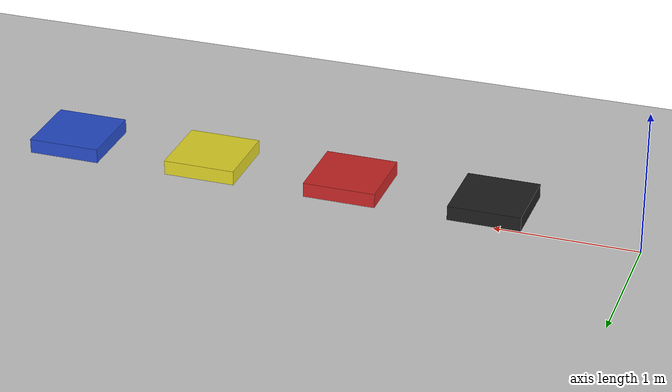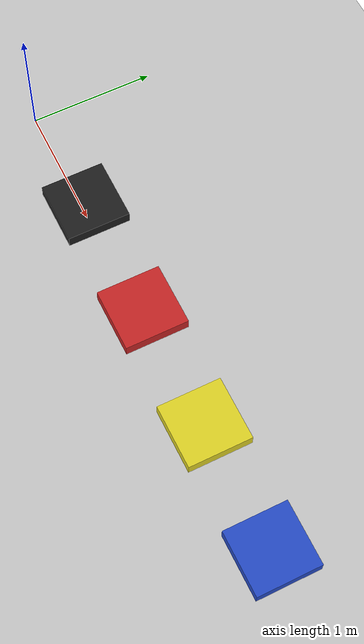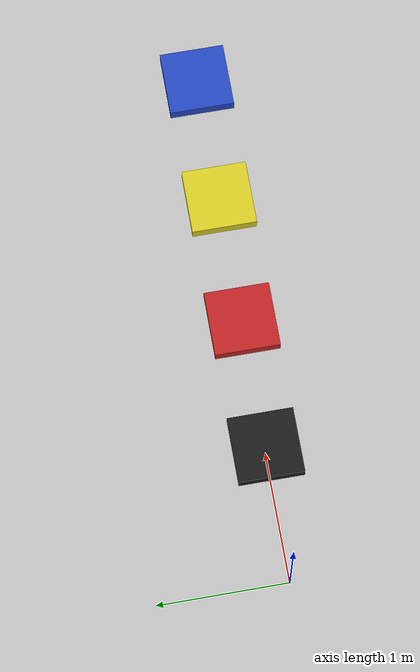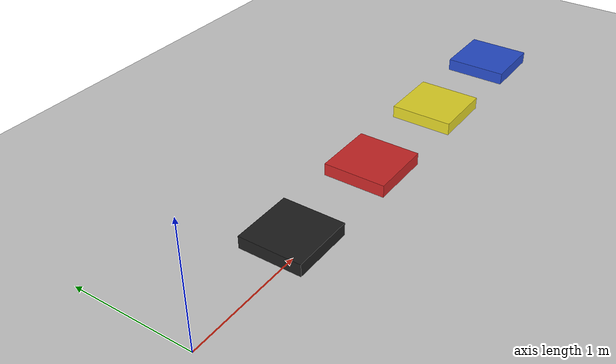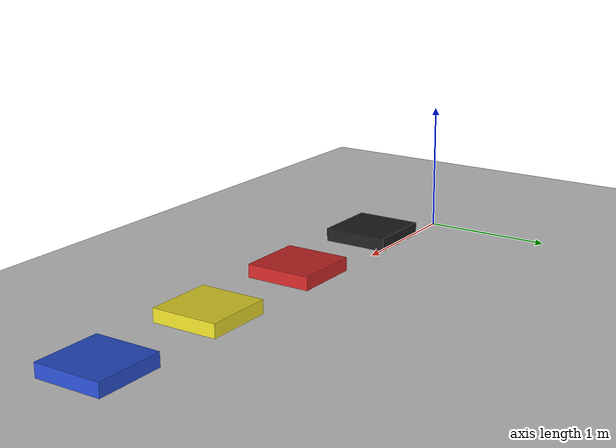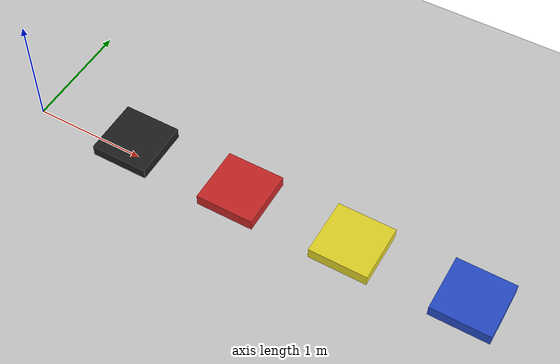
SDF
<sdf version="1.6">
 <world name="multi_box">
  <include><uri>model://sun</uri></include>
  <include><uri>model://ground_plane</uri></include>
  <model name="black_box">
   <pose>1 0 0.2 0 0 0</pose>
   <static>true</static>
   <link name="link">
    <inertial><mass>1.0</mass></inertial>
    <collision name="my_collision"><geometry><box><size>0.5 0.5 0.1</size></box></geometry></collision>
    <visual name="my_visual">
     <geometry><box><size>0.5 0.5 0.1</size></box></geometry>
     <material>
      <script><name>Gazebo/Black</name><uri>file://media/materials/scripts/gazebo.material</uri></script>
     </material>
    </visual>
   </link>
  </model>
  <model name="red_box">
   <pose>2 0 0.2 0 0 0</pose>
   <static>true</static>
   <link name="link">
    <inertial><mass>1.0</mass></inertial>
    <collision name="my_collision"><geometry><box><size>0.5 0.5 0.1</size></box></geometry></collision>
    <visual name="my_visual">
     <geometry><box><size>0.5 0.5 0.1</size></box></geometry>
     <material>
      <script><name>Gazebo/Red</name><uri>file://media/materials/scripts/gazebo.material</uri></script>
     </material>
    </visual>
   </link>
  </model>
  <model name="yellow_box">
   <pose>3 0 0.2 0 0 0</pose>
   <static>true</static>
   <link name="link">
    <inertial><mass>1.0</mass></inertial>
    <collision name="my_collision"><geometry><box><size>0.5 0.5 0.1</size></box></geometry></collision>
    <visual name="my_visual">
     <geometry><box><size>0.5 0.5 0.1</size></box></geometry>
     <material>
      <script><name>Gazebo/Yellow</name><uri>file://media/materials/scripts/gazebo.material</uri></script>
     </material>
    </visual>
   </link>
  </model>
  <model name="blue_box">
   <pose>4 0 0.2 0 0 0</pose>
   <static>true</static>
   <link name="link">
    <inertial><mass>1.0</mass></inertial>
    <collision name="my_collision"><geometry><box><size>0.5 0.5 0.1</size></box></geometry></collision>
    <visual name="my_visual">
     <geometry><box><size>0.5 0.5 0.1</size></box></geometry>
     <material>
      <script><name>Gazebo/Blue</name><uri>file://media/materials/scripts/gazebo.material</uri></script>
     </material>
    </visual>
   </link>
  </model>
  <physics name="default_physics" default="0" type="ode">
   <gravity>0 0 -9.8066</gravity>
   <ode>
    <solver>
     <type>quick</type>
     <iters>150</iters>
     <sor>1.3</sor>
     <use_dynamic_moi_rescaling>0</use_dynamic_moi_rescaling>
    </solver>
    <constraints>
     <cfm>0.00001</cfm>
     <erp>0.2</erp>
     <contact_max_correcting_vel>1000</contact_max_correcting_vel>
     <contact_surface_layer>0.01</contact_surface_layer>
    </constraints>
   </ode>
   <max_step_size>0.004</max_step_size>
   <real_time_factor>1000.0</real_time_factor>
   <real_time_update_rate>250</real_time_update_rate>
   <magnetic_field>6.0e-6 2.3e-5 -4.2e-5</magnetic_field>
  </physics>
 </world>
</sdf>
